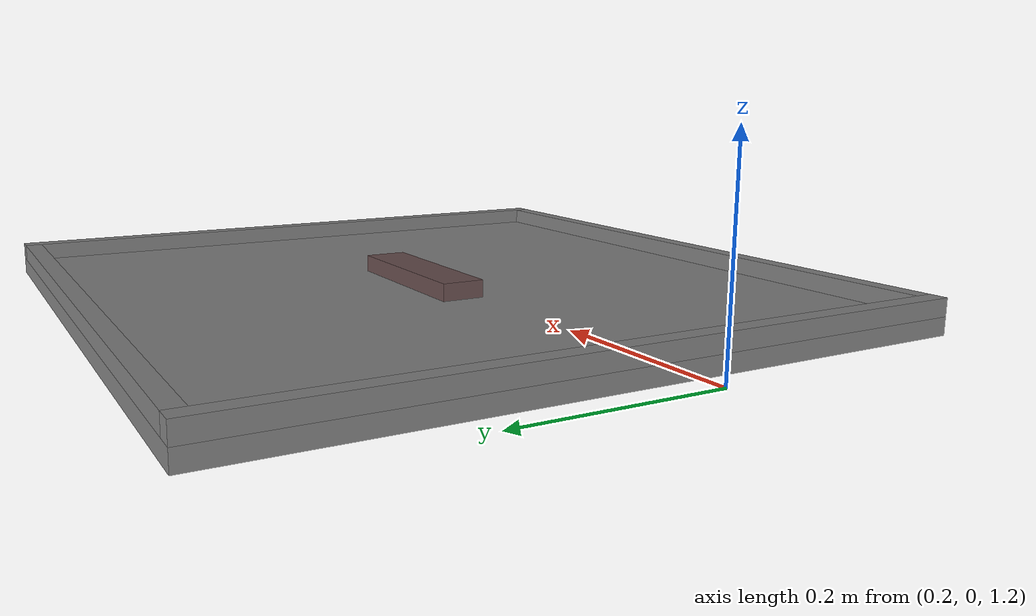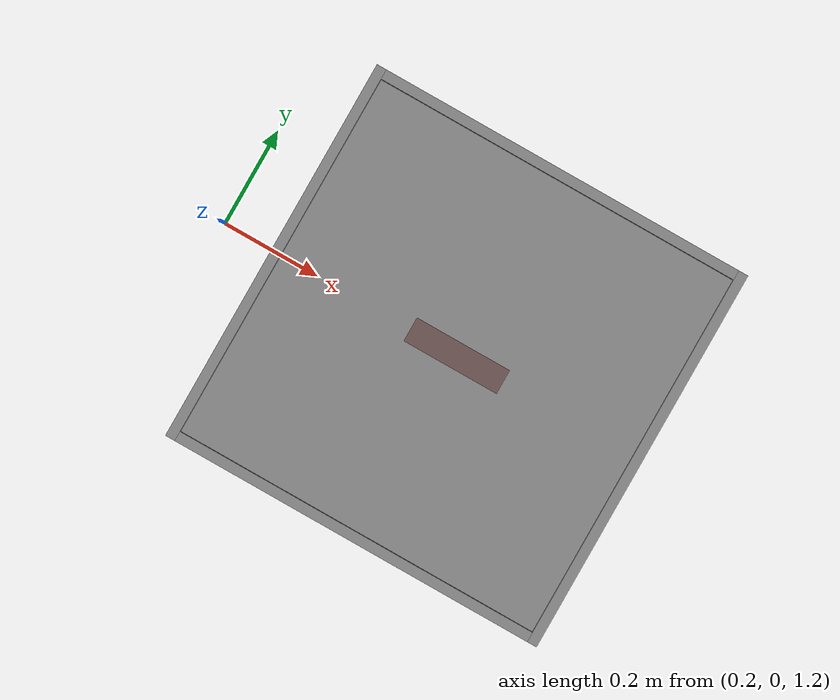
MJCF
<?xml version="1.0" ?>

<mujoco>
  <compiler angle="radian" coordinate="local"/>
  <option>
    <flag gravity="enable"/>
  </option>
  <default>
    <default class="visual">
      <geom contype="0" conaffinity="0"/>
    </default>
    <default class="collision">
      <geom contype="1" conaffinity="1"/>
    </default>
    <site rgba="1 0 0 .5"/>
  </default>

  <worldbody>
    <include file="block_collision.xml"/>
  </worldbody>
</mujoco>

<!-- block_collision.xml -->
<mujoco>
  <body name="pushing_table" euler="0 0 0" pos=".7 0 1.18">
    <geom class="collision" type="box" euler="0 0 0" pos="0 0 0" size=".4 .4 0.01"/>
    <geom class="collision" type="box" euler="0 0 0" pos=".39 0 0.02" size=".01 .4 0.01"/>
    <geom class="collision" type="box" euler="0 0 0" pos="-.39 0 0.02" size=".01 .4 0.01"/>
    <geom class="collision" type="box" euler="0 0 0" pos="0 .39 0.02" size=".38 .01 0.01"/>
    <geom class="collision" type="box" euler="0 0 0" pos="0 -.39 0.02" size=".38 .01 0.01"/>
  </body>
  <body name="block" euler="0 0 0" pos=".7 0 1.2">
      <joint type="free" name="block_position"/>
      <geom class="collision" type="box" euler="0 0 0" pos="0 0 0" size="0.1 0.025 0.01" mass="1" rgba="0.4 0.3 0.3 1.0"/>
    </body>
</mujoco>
